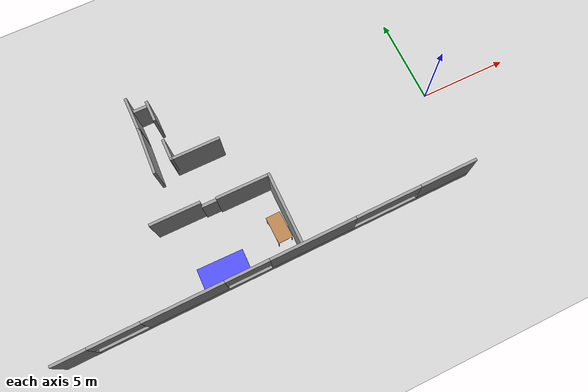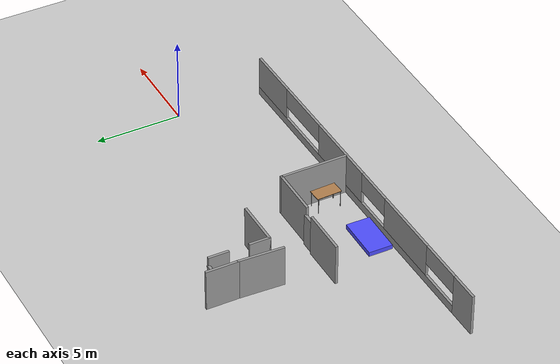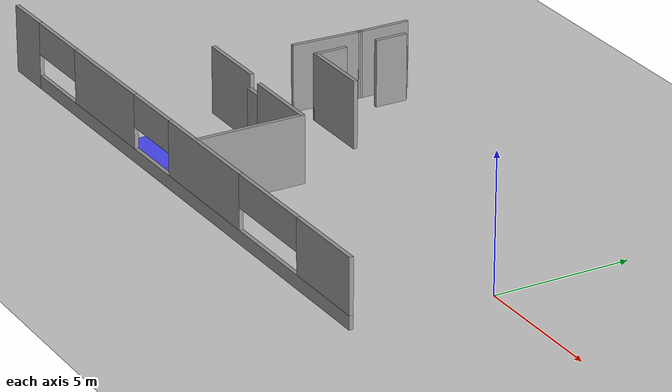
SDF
<sdf version="1.7">
 <world name="default">
  <model name="ground_plane">
   <static>1</static>
   <link name="link">
    <collision name="collision">
     <geometry><plane><normal>0 0 1</normal><size>100 100</size></plane></geometry>
     <surface><friction><ode><mu>100</mu><mu2>50</mu2></ode></friction></surface>
    </collision>
    <visual name="visual">
     <cast_shadows>0</cast_shadows>
     <geometry><plane><normal>0 0 1</normal><size>100 100</size></plane></geometry>
     <material>
      <script><uri>file://media/materials/scripts/gazebo.material</uri><name>Gazebo/Grey</name></script>
     </material>
    </visual>
   </link>
  </model>
  <model name="table_1">
   <static>1</static>
   <link name="link">
    <collision name="surface">
     <pose>0 0 1 0 -0 0</pose>
     <geometry><box><size>1.5 0.8 0.03</size></box></geometry>
     <surface><friction><ode><mu>0.6</mu><mu2>0.6</mu2></ode></friction></surface>
    </collision>
    <visual name="visual1">
     <pose>0 0 1 0 -0 0</pose>
     <geometry><box><size>1.5 0.8 0.03</size></box></geometry>
     <material>
      <script><uri>file://media/materials/scripts/gazebo.material</uri><name>Gazebo/Wood</name></script>
     </material>
    </visual>
    <collision name="front_left_leg">
     <pose>0.68 0.38 0.5 0 -0 0</pose>
     <geometry><cylinder><radius>0.02</radius><length>1</length></cylinder></geometry>
    </collision>
    <visual name="front_left_leg">
     <pose>0.68 0.38 0.5 0 -0 0</pose>
     <geometry><cylinder><radius>0.02</radius><length>1</length></cylinder></geometry>
     <material>
      <script><uri>file://media/materials/scripts/gazebo.material</uri><name>Gazebo/Grey</name></script>
     </material>
    </visual>
    <collision name="front_right_leg">
     <pose>0.68 -0.38 0.5 0 -0 0</pose>
     <geometry><cylinder><radius>0.02</radius><length>1</length></cylinder></geometry>
    </collision>
    <visual name="front_right_leg">
     <pose>0.68 -0.38 0.5 0 -0 0</pose>
     <geometry><cylinder><radius>0.02</radius><length>1</length></cylinder></geometry>
     <material>
      <script><uri>file://media/materials/scripts/gazebo.material</uri><name>Gazebo/Grey</name></script>
     </material>
    </visual>
    <collision name="back_right_leg">
     <pose>-0.68 -0.38 0.5 0 -0 0</pose>
     <geometry><cylinder><radius>0.02</radius><length>1</length></cylinder></geometry>
    </collision>
    <visual name="back_right_leg">
     <pose>-0.68 -0.38 0.5 0 -0 0</pose>
     <geometry><cylinder><radius>0.02</radius><length>1</length></cylinder></geometry>
     <material>
      <script><uri>file://media/materials/scripts/gazebo.material</uri><name>Gazebo/Grey</name></script>
     </material>
    </visual>
    <collision name="back_left_leg">
     <pose>-0.68 0.38 0.5 0 -0 0</pose>
     <geometry><cylinder><radius>0.02</radius><length>1</length></cylinder></geometry>
    </collision>
    <visual name="back_left_leg">
     <pose>-0.68 0.38 0.5 0 -0 0</pose>
     <geometry><cylinder><radius>0.02</radius><length>1</length></cylinder></geometry>
     <material>
      <script><uri>file://media/materials/scripts/gazebo.material</uri><name>Gazebo/Grey</name></script>
     </material>
    </visual>
   </link>
   <pose>-10.7209 -3.54657 0 0 0 -1.53816</pose>
  </model>
  <model name="bed_1_clone">
   <link name="link">
    <inertial>
     <mass>1</mass>
     <inertia>
      <ixx>0.166667</ixx>
      <ixy>0</ixy>
      <ixz>0</ixz>
      <iyy>0.166667</iyy>
      <iyz>0</iyz>
      <izz>0.166667</izz>
     </inertia>
    </inertial>
    <visual name="visual">
     <geometry><box><size>1.40955 2.56695 0.267057</size></box></geometry>
     <material>
      <script><name>Gazebo/Grey</name><uri>file://media/materials/scripts/gazebo.material</uri></script>
      <shader type="pixel"><normal_map>__default__</normal_map></shader>
      <ambient>0.3 0.3 1 0</ambient>
      <diffuse>0.7 0.7 0.7 1</diffuse>
      <specular>0.01 0.01 0.01 1</specular>
      <emissive>0 0 0 1</emissive>
     </material>
    </visual>
    <collision name="collision">
     <geometry><box><size>1.40955 2.56695 0.267057</size></box></geometry>
     <surface>
      <friction>
       <ode><mu>1</mu><mu2>1</mu2><fdir1>0 0 0</fdir1><slip1>0</slip1><slip2>0</slip2></ode>
       <torsional>
        <coefficient>1</coefficient>
        <patch_radius>0</patch_radius>
        <surface_radius>0</surface_radius>
        <use_patch_radius>1</use_patch_radius>
        <ode><slip>0</slip></ode>
       </torsional>
      </friction>
      <bounce><restitution_coefficient>0</restitution_coefficient><threshold>1e+06</threshold></bounce>
      <contact>
       <collide_without_contact>0</collide_without_contact>
       <collide_without_contact_bitmask>1</collide_without_contact_bitmask>
       <collide_bitmask>1</collide_bitmask>
       <ode>
        <soft_cfm>0</soft_cfm>
        <soft_erp>0.2</soft_erp>
        <kp>1e+13</kp>
        <kd>1</kd>
        <max_vel>0.01</max_vel>
        <min_depth>0</min_depth>
       </ode>
       <bullet>
        <split_impulse>1</split_impulse>
        <split_impulse_penetration_threshold>-0.01</split_impulse_penetration_threshold>
        <soft_cfm>0</soft_cfm>
        <soft_erp>0.2</soft_erp>
        <kp>1e+13</kp>
        <kd>1</kd>
       </bullet>
      </contact>
     </surface>
    </collision>
   </link>
   <static>0</static>
   <pose>-14.1949 -4.28318 0.133524 0 7e-06 -1.58215</pose>
  </model>
  <model name="Building">
   <link name="Door_0">
    <pose>-3.07095 4.97963 0 0 -0 0</pose>
    <visual name="Door_0_Visual">
     <pose>0 0 1 0 -0 0</pose>
     <geometry><box><size>0.9 0.17 2</size></box></geometry>
     <material>
      <script><uri>file://media/materials/scripts/gazebo.material</uri><name>Gazebo/Grey</name></script>
      <shader type="pixel"/>
      <ambient>0.3 0.3 0.3 1</ambient>
      <diffuse>0.7 0.7 0.7 1</diffuse>
      <specular>0.01 0.01 0.01 1</specular>
      <emissive>0 0 0 1</emissive>
     </material>
    </visual>
    <collision name="Door_0_Collision">
     <pose>0 0 1 0 -0 0</pose>
     <geometry><box><size>0.9 0.17 2</size></box></geometry>
     <surface>
      <friction>
       <ode><mu>1</mu><mu2>1</mu2><fdir1>0 0 0</fdir1><slip1>0</slip1><slip2>0</slip2></ode>
       <torsional>
        <coefficient>1</coefficient>
        <patch_radius>0</patch_radius>
        <surface_radius>0</surface_radius>
        <use_patch_radius>1</use_patch_radius>
        <ode><slip>0</slip></ode>
       </torsional>
      </friction>
      <bounce><restitution_coefficient>0</restitution_coefficient><threshold>1e+06</threshold></bounce>
      <contact>
       <collide_without_contact>0</collide_without_contact>
       <collide_without_contact_bitmask>1</collide_without_contact_bitmask>
       <collide_bitmask>1</collide_bitmask>
       <ode>
        <soft_cfm>0</soft_cfm>
        <soft_erp>0.2</soft_erp>
        <kp>1e+13</kp>
        <kd>1</kd>
        <max_vel>0.01</max_vel>
        <min_depth>0</min_depth>
       </ode>
       <bullet>
        <split_impulse>1</split_impulse>
        <split_impulse_penetration_threshold>-0.01</split_impulse_penetration_threshold>
        <soft_cfm>0</soft_cfm>
        <soft_erp>0.2</soft_erp>
        <kp>1e+13</kp>
        <kd>1</kd>
       </bullet>
      </contact>
     </surface>
    </collision>
   </link>
   <link name="Door_4">
    <pose>-1.77638 -1.3719 0 0 -0 0</pose>
    <visual name="Door_4_Visual">
     <pose>0 0 1 0 -0 0</pose>
     <geometry><box><size>0.9 0.17 2</size></box></geometry>
     <material>
      <script><uri>file://media/materials/scripts/gazebo.material</uri><name>Gazebo/Grey</name></script>
      <shader type="pixel"/>
      <ambient>0.3 0.3 0.3 1</ambient>
      <diffuse>0.7 0.7 0.7 1</diffuse>
      <specular>0.01 0.01 0.01 1</specular>
      <emissive>0 0 0 1</emissive>
     </material>
    </visual>
    <collision name="Door_4_Collision">
     <pose>0 0 1 0 -0 0</pose>
     <geometry><box><size>0.9 0.17 2</size></box></geometry>
     <surface>
      <friction>
       <ode><mu>1</mu><mu2>1</mu2><fdir1>0 0 0</fdir1><slip1>0</slip1><slip2>0</slip2></ode>
       <torsional>
        <coefficient>1</coefficient>
        <patch_radius>0</patch_radius>
        <surface_radius>0</surface_radius>
        <use_patch_radius>1</use_patch_radius>
        <ode><slip>0</slip></ode>
       </torsional>
      </friction>
      <bounce><restitution_coefficient>0</restitution_coefficient><threshold>1e+06</threshold></bounce>
      <contact>
       <collide_without_contact>0</collide_without_contact>
       <collide_without_contact_bitmask>1</collide_without_contact_bitmask>
       <collide_bitmask>1</collide_bitmask>
       <ode>
        <soft_cfm>0</soft_cfm>
        <soft_erp>0.2</soft_erp>
        <kp>1e+13</kp>
        <kd>1</kd>
        <max_vel>0.01</max_vel>
        <min_depth>0</min_depth>
       </ode>
       <bullet>
        <split_impulse>1</split_impulse>
        <split_impulse_penetration_threshold>-0.01</split_impulse_penetration_threshold>
        <soft_cfm>0</soft_cfm>
        <soft_erp>0.2</soft_erp>
        <kp>1e+13</kp>
        <kd>1</kd>
       </bullet>
      </contact>
     </surface>
    </collision>
   </link>
   <link name="Wall_1">
    <pose>-3.5548 4.621 0 0 0 -1.5708</pose>
    <visual name="Wall_1_Visual">
     <pose>0 0 1.25 0 -0 0</pose>
     <geometry><box><size>2 0.15 2.5</size></box></geometry>
     <material>
      <script><uri>file://media/materials/scripts/gazebo.material</uri><name>Gazebo/Grey</name></script>
      <ambient>1 1 1 1</ambient>
      <shader type="pixel"/>
      <diffuse>0.7 0.7 0.7 1</diffuse>
      <specular>0.01 0.01 0.01 1</specular>
      <emissive>0 0 0 1</emissive>
     </material>
     <meta><layer>0</layer></meta>
    </visual>
    <collision name="Wall_1_Collision">
     <pose>0 0 1.25 0 -0 0</pose>
     <geometry><box><size>2 0.15 2.5</size></box></geometry>
     <surface>
      <friction>
       <ode><mu>1</mu><mu2>1</mu2><fdir1>0 0 0</fdir1><slip1>0</slip1><slip2>0</slip2></ode>
       <torsional>
        <coefficient>1</coefficient>
        <patch_radius>0</patch_radius>
        <surface_radius>0</surface_radius>
        <use_patch_radius>1</use_patch_radius>
        <ode><slip>0</slip></ode>
       </torsional>
      </friction>
      <bounce><restitution_coefficient>0</restitution_coefficient><threshold>1e+06</threshold></bounce>
      <contact>
       <collide_without_contact>0</collide_without_contact>
       <collide_without_contact_bitmask>1</collide_without_contact_bitmask>
       <collide_bitmask>1</collide_bitmask>
       <ode>
        <soft_cfm>0</soft_cfm>
        <soft_erp>0.2</soft_erp>
        <kp>1e+13</kp>
        <kd>1</kd>
        <max_vel>0.01</max_vel>
        <min_depth>0</min_depth>
       </ode>
       <bullet>
        <split_impulse>1</split_impulse>
        <split_impulse_penetration_threshold>-0.01</split_impulse_penetration_threshold>
        <soft_cfm>0</soft_cfm>
        <soft_erp>0.2</soft_erp>
        <kp>1e+13</kp>
        <kd>1</kd>
       </bullet>
      </contact>
     </surface>
    </collision>
   </link>
   <link name="Wall_15">
    <pose>-3.61293 2.4364 0 0 -0 1.52468</pose>
    <visual name="Wall_15_Visual">
     <pose>0 0 1.25 0 -0 0</pose>
     <geometry><box><size>2.67188 0.15 2.5</size></box></geometry>
     <material>
      <script><uri>file://media/materials/scripts/gazebo.material</uri><name>Gazebo/Grey</name></script>
      <ambient>1 1 1 1</ambient>
      <shader type="pixel"/>
      <diffuse>0.7 0.7 0.7 1</diffuse>
      <specular>0.01 0.01 0.01 1</specular>
      <emissive>0 0 0 1</emissive>
     </material>
     <meta><layer>0</layer></meta>
    </visual>
    <collision name="Wall_15_Collision">
     <pose>0 0 1.25 0 -0 0</pose>
     <geometry><box><size>2.67188 0.15 2.5</size></box></geometry>
     <surface>
      <friction>
       <ode><mu>1</mu><mu2>1</mu2><fdir1>0 0 0</fdir1><slip1>0</slip1><slip2>0</slip2></ode>
       <torsional>
        <coefficient>1</coefficient>
        <patch_radius>0</patch_radius>
        <surface_radius>0</surface_radius>
        <use_patch_radius>1</use_patch_radius>
        <ode><slip>0</slip></ode>
       </torsional>
      </friction>
      <bounce><restitution_coefficient>0</restitution_coefficient><threshold>1e+06</threshold></bounce>
      <contact>
       <collide_without_contact>0</collide_without_contact>
       <collide_without_contact_bitmask>1</collide_without_contact_bitmask>
       <collide_bitmask>1</collide_bitmask>
       <ode>
        <soft_cfm>0</soft_cfm>
        <soft_erp>0.2</soft_erp>
        <kp>1e+13</kp>
        <kd>1</kd>
        <max_vel>0.01</max_vel>
        <min_depth>0</min_depth>
       </ode>
       <bullet>
        <split_impulse>1</split_impulse>
        <split_impulse_penetration_threshold>-0.01</split_impulse_penetration_threshold>
        <soft_cfm>0</soft_cfm>
        <soft_erp>0.2</soft_erp>
        <kp>1e+13</kp>
        <kd>1</kd>
       </bullet>
      </contact>
     </surface>
    </collision>
   </link>
   <link name="Wall_20">
    <pose>-3.551 -1.29099 0 0 -0 0</pose>
    <visual name="Wall_20_Visual">
     <pose>0 0 1.25 0 -0 0</pose>
     <geometry><box><size>2.75 0.15 2.5</size></box></geometry>
     <material>
      <script><uri>file://media/materials/scripts/gazebo.material</uri><name>Gazebo/Grey</name></script>
      <ambient>1 1 1 1</ambient>
      <shader type="pixel"/>
      <diffuse>0.7 0.7 0.7 1</diffuse>
      <specular>0.01 0.01 0.01 1</specular>
      <emissive>0 0 0 1</emissive>
     </material>
     <meta><layer>0</layer></meta>
    </visual>
    <collision name="Wall_20_Collision">
     <pose>0 0 1.25 0 -0 0</pose>
     <geometry><box><size>2.75 0.15 2.5</size></box></geometry>
     <surface>
      <friction>
       <ode><mu>1</mu><mu2>1</mu2><fdir1>0 0 0</fdir1><slip1>0</slip1><slip2>0</slip2></ode>
       <torsional>
        <coefficient>1</coefficient>
        <patch_radius>0</patch_radius>
        <surface_radius>0</surface_radius>
        <use_patch_radius>1</use_patch_radius>
        <ode><slip>0</slip></ode>
       </torsional>
      </friction>
      <bounce><restitution_coefficient>0</restitution_coefficient><threshold>1e+06</threshold></bounce>
      <contact>
       <collide_without_contact>0</collide_without_contact>
       <collide_without_contact_bitmask>1</collide_without_contact_bitmask>
       <collide_bitmask>1</collide_bitmask>
       <ode>
        <soft_cfm>0</soft_cfm>
        <soft_erp>0.2</soft_erp>
        <kp>1e+13</kp>
        <kd>1</kd>
        <max_vel>0.01</max_vel>
        <min_depth>0</min_depth>
       </ode>
       <bullet>
        <split_impulse>1</split_impulse>
        <split_impulse_penetration_threshold>-0.01</split_impulse_penetration_threshold>
        <soft_cfm>0</soft_cfm>
        <soft_erp>0.2</soft_erp>
        <kp>1e+13</kp>
        <kd>1</kd>
       </bullet>
      </contact>
     </surface>
    </collision>
   </link>
   <link name="Wall_22">
    <pose>-2.6112 4.39486 0 0 0 -1.5708</pose>
    <visual name="Wall_22_Visual">
     <pose>0 0 1.25 0 -0 0</pose>
     <geometry><box><size>1.20954 0.15 2.5</size></box></geometry>
     <material>
      <script><uri>file://media/materials/scripts/gazebo.material</uri><name>Gazebo/Grey</name></script>
      <ambient>1 1 1 1</ambient>
      <shader type="pixel"/>
      <diffuse>0.7 0.7 0.7 1</diffuse>
      <specular>0.01 0.01 0.01 1</specular>
      <emissive>0 0 0 1</emissive>
     </material>
     <meta><layer>0</layer></meta>
    </visual>
    <collision name="Wall_22_Collision">
     <pose>0 0 1.25 0 -0 0</pose>
     <geometry><box><size>1.20954 0.15 2.5</size></box></geometry>
     <surface>
      <friction>
       <ode><mu>1</mu><mu2>1</mu2><fdir1>0 0 0</fdir1><slip1>0</slip1><slip2>0</slip2></ode>
       <torsional>
        <coefficient>1</coefficient>
        <patch_radius>0</patch_radius>
        <surface_radius>0</surface_radius>
        <use_patch_radius>1</use_patch_radius>
        <ode><slip>0</slip></ode>
       </torsional>
      </friction>
      <bounce><restitution_coefficient>0</restitution_coefficient><threshold>1e+06</threshold></bounce>
      <contact>
       <collide_without_contact>0</collide_without_contact>
       <collide_without_contact_bitmask>1</collide_without_contact_bitmask>
       <collide_bitmask>1</collide_bitmask>
       <ode>
        <soft_cfm>0</soft_cfm>
        <soft_erp>0.2</soft_erp>
        <kp>1e+13</kp>
        <kd>1</kd>
        <max_vel>0.01</max_vel>
        <min_depth>0</min_depth>
       </ode>
       <bullet>
        <split_impulse>1</split_impulse>
        <split_impulse_penetration_threshold>-0.01</split_impulse_penetration_threshold>
        <soft_cfm>0</soft_cfm>
        <soft_erp>0.2</soft_erp>
        <kp>1e+13</kp>
        <kd>1</kd>
       </bullet>
      </contact>
     </surface>
    </collision>
   </link>
   <link name="Wall_24">
    <pose>-2.62594 2.00229 0 0 0 -1.5708</pose>
    <visual name="Wall_24_Visual">
     <pose>0 0 1.25 0 -0 0</pose>
     <geometry><box><size>1.25 0.15 2.5</size></box></geometry>
     <material>
      <script><uri>file://media/materials/scripts/gazebo.material</uri><name>Gazebo/Grey</name></script>
      <ambient>1 1 1 1</ambient>
      <shader type="pixel"/>
      <diffuse>0.7 0.7 0.7 1</diffuse>
      <specular>0.01 0.01 0.01 1</specular>
      <emissive>0 0 0 1</emissive>
     </material>
     <meta><layer>0</layer></meta>
    </visual>
    <collision name="Wall_24_Collision">
     <pose>0 0 1.25 0 -0 0</pose>
     <geometry><box><size>1.25 0.15 2.5</size></box></geometry>
     <surface>
      <friction>
       <ode><mu>1</mu><mu2>1</mu2><fdir1>0 0 0</fdir1><slip1>0</slip1><slip2>0</slip2></ode>
       <torsional>
        <coefficient>1</coefficient>
        <patch_radius>0</patch_radius>
        <surface_radius>0</surface_radius>
        <use_patch_radius>1</use_patch_radius>
        <ode><slip>0</slip></ode>
       </torsional>
      </friction>
      <bounce><restitution_coefficient>0</restitution_coefficient><threshold>1e+06</threshold></bounce>
      <contact>
       <collide_without_contact>0</collide_without_contact>
       <collide_without_contact_bitmask>1</collide_without_contact_bitmask>
       <collide_bitmask>1</collide_bitmask>
       <ode>
        <soft_cfm>0</soft_cfm>
        <soft_erp>0.2</soft_erp>
        <kp>1e+13</kp>
        <kd>1</kd>
        <max_vel>0.01</max_vel>
        <min_depth>0</min_depth>
       </ode>
       <bullet>
        <split_impulse>1</split_impulse>
        <split_impulse_penetration_threshold>-0.01</split_impulse_penetration_threshold>
        <soft_cfm>0</soft_cfm>
        <soft_erp>0.2</soft_erp>
        <kp>1e+13</kp>
        <kd>1</kd>
       </bullet>
      </contact>
     </surface>
    </collision>
   </link>
   <link name="Wall_25">
    <pose>-1.32594 1.45229 0 0 -0 0</pose>
    <visual name="Wall_25_Visual">
     <pose>0 0 1.25 0 -0 0</pose>
     <geometry><box><size>2.75 0.15 2.5</size></box></geometry>
     <material>
      <script><uri>file://media/materials/scripts/gazebo.material</uri><name>Gazebo/Grey</name></script>
      <ambient>1 1 1 1</ambient>
      <shader type="pixel"/>
      <diffuse>0.7 0.7 0.7 1</diffuse>
      <specular>0.01 0.01 0.01 1</specular>
      <emissive>0 0 0 1</emissive>
     </material>
     <meta><layer>0</layer></meta>
    </visual>
    <collision name="Wall_25_Collision">
     <pose>0 0 1.25 0 -0 0</pose>
     <geometry><box><size>2.75 0.15 2.5</size></box></geometry>
     <surface>
      <friction>
       <ode><mu>1</mu><mu2>1</mu2><fdir1>0 0 0</fdir1><slip1>0</slip1><slip2>0</slip2></ode>
       <torsional>
        <coefficient>1</coefficient>
        <patch_radius>0</patch_radius>
        <surface_radius>0</surface_radius>
        <use_patch_radius>1</use_patch_radius>
        <ode><slip>0</slip></ode>
       </torsional>
      </friction>
      <bounce><restitution_coefficient>0</restitution_coefficient><threshold>1e+06</threshold></bounce>
      <contact>
       <collide_without_contact>0</collide_without_contact>
       <collide_without_contact_bitmask>1</collide_without_contact_bitmask>
       <collide_bitmask>1</collide_bitmask>
       <ode>
        <soft_cfm>0</soft_cfm>
        <soft_erp>0.2</soft_erp>
        <kp>1e+13</kp>
        <kd>1</kd>
        <max_vel>0.01</max_vel>
        <min_depth>0</min_depth>
       </ode>
       <bullet>
        <split_impulse>1</split_impulse>
        <split_impulse_penetration_threshold>-0.01</split_impulse_penetration_threshold>
        <soft_cfm>0</soft_cfm>
        <soft_erp>0.2</soft_erp>
        <kp>1e+13</kp>
        <kd>1</kd>
       </bullet>
      </contact>
     </surface>
    </collision>
   </link>
   <link name="Wall_29">
    <pose>0.093636 -1.45281 0 0 -0 0</pose>
    <visual name="Wall_29_Visual">
     <pose>0 0 1.25 0 -0 0</pose>
     <geometry><box><size>3 0.15 2.5</size></box></geometry>
     <material>
      <script><uri>file://media/materials/scripts/gazebo.material</uri><name>Gazebo/Grey</name></script>
      <ambient>1 1 1 1</ambient>
      <shader type="pixel"/>
      <diffuse>0.7 0.7 0.7 1</diffuse>
      <specular>0.01 0.01 0.01 1</specular>
      <emissive>0 0 0 1</emissive>
     </material>
     <meta><layer>0</layer></meta>
    </visual>
    <collision name="Wall_29_Collision">
     <pose>0 0 1.25 0 -0 0</pose>
     <geometry><box><size>3 0.15 2.5</size></box></geometry>
     <surface>
      <friction>
       <ode><mu>1</mu><mu2>1</mu2><fdir1>0 0 0</fdir1><slip1>0</slip1><slip2>0</slip2></ode>
       <torsional>
        <coefficient>1</coefficient>
        <patch_radius>0</patch_radius>
        <surface_radius>0</surface_radius>
        <use_patch_radius>1</use_patch_radius>
        <ode><slip>0</slip></ode>
       </torsional>
      </friction>
      <bounce><restitution_coefficient>0</restitution_coefficient><threshold>1e+06</threshold></bounce>
      <contact>
       <collide_without_contact>0</collide_without_contact>
       <collide_without_contact_bitmask>1</collide_without_contact_bitmask>
       <collide_bitmask>1</collide_bitmask>
       <ode>
        <soft_cfm>0</soft_cfm>
        <soft_erp>0.2</soft_erp>
        <kp>1e+13</kp>
        <kd>1</kd>
        <max_vel>0.01</max_vel>
        <min_depth>0</min_depth>
       </ode>
       <bullet>
        <split_impulse>1</split_impulse>
        <split_impulse_penetration_threshold>-0.01</split_impulse_penetration_threshold>
        <soft_cfm>0</soft_cfm>
        <soft_erp>0.2</soft_erp>
        <kp>1e+13</kp>
        <kd>1</kd>
       </bullet>
      </contact>
     </surface>
    </collision>
   </link>
   <link name="Wall_30">
    <pose>1.51864 -3.37781 0 0 0 -1.5708</pose>
    <visual name="Wall_30_Visual">
     <pose>0 0 1.25 0 -0 0</pose>
     <geometry><box><size>4 0.15 2.5</size></box></geometry>
     <material>
      <script><uri>file://media/materials/scripts/gazebo.material</uri><name>Gazebo/Grey</name></script>
      <ambient>1 1 1 1</ambient>
      <shader type="pixel"/>
      <diffuse>0.7 0.7 0.7 1</diffuse>
      <specular>0.01 0.01 0.01 1</specular>
      <emissive>0 0 0 1</emissive>
     </material>
     <meta><layer>0</layer></meta>
    </visual>
    <collision name="Wall_30_Collision">
     <pose>0 0 1.25 0 -0 0</pose>
     <geometry><box><size>4 0.15 2.5</size></box></geometry>
     <surface>
      <friction>
       <ode><mu>1</mu><mu2>1</mu2><fdir1>0 0 0</fdir1><slip1>0</slip1><slip2>0</slip2></ode>
       <torsional>
        <coefficient>1</coefficient>
        <patch_radius>0</patch_radius>
        <surface_radius>0</surface_radius>
        <use_patch_radius>1</use_patch_radius>
        <ode><slip>0</slip></ode>
       </torsional>
      </friction>
      <bounce><restitution_coefficient>0</restitution_coefficient><threshold>1e+06</threshold></bounce>
      <contact>
       <collide_without_contact>0</collide_without_contact>
       <collide_without_contact_bitmask>1</collide_without_contact_bitmask>
       <collide_bitmask>1</collide_bitmask>
       <ode>
        <soft_cfm>0</soft_cfm>
        <soft_erp>0.2</soft_erp>
        <kp>1e+13</kp>
        <kd>1</kd>
        <max_vel>0.01</max_vel>
        <min_depth>0</min_depth>
       </ode>
       <bullet>
        <split_impulse>1</split_impulse>
        <split_impulse_penetration_threshold>-0.01</split_impulse_penetration_threshold>
        <soft_cfm>0</soft_cfm>
        <soft_erp>0.2</soft_erp>
        <kp>1e+13</kp>
        <kd>1</kd>
       </bullet>
      </contact>
     </surface>
    </collision>
   </link>
   <link name="Wall_4">
    <pose>-0.060713 -5.42439 0 0 -0 0.01066</pose>
    <visual name="Wall_4_Visual_6">
     <pose>-1.39273 0 1.9 0 -0 0</pose>
     <geometry><box><size>2.41899 0.15 1.2</size></box></geometry>
     <material>
      <script><uri>file://media/materials/scripts/gazebo.material</uri><name>Gazebo/Grey</name></script>
      <ambient>1 1 1 1</ambient>
      <shader type="pixel"/>
      <diffuse>0.7 0.7 0.7 1</diffuse>
      <specular>0.01 0.01 0.01 1</specular>
      <emissive>0 0 0 1</emissive>
     </material>
     <meta><layer>0</layer></meta>
    </visual>
    <visual name="Wall_4_Visual_0">
     <pose>-10.5506 0 1.25 0 -0 0</pose>
     <geometry><box><size>1.8191 0.15 2.5</size></box></geometry>
     <material>
      <script><uri>file://media/materials/scripts/gazebo.material</uri><name>Gazebo/Grey</name></script>
      <ambient>1 1 1 1</ambient>
      <shader type="pixel"/>
      <diffuse>0.7 0.7 0.7 1</diffuse>
      <specular>0.01 0.01 0.01 1</specular>
      <emissive>0 0 0 1</emissive>
     </material>
     <meta><layer>0</layer></meta>
    </visual>
    <visual name="Wall_4_Visual_1">
     <pose>0.909548 0 0.25 0 -0 0</pose>
     <geometry><box><size>21.1013 0.15 0.5</size></box></geometry>
     <material>
      <script><uri>file://media/materials/scripts/gazebo.material</uri><name>Gazebo/Grey</name></script>
      <ambient>1 1 1 1</ambient>
      <shader type="pixel"/>
      <diffuse>0.7 0.7 0.7 1</diffuse>
      <specular>0.01 0.01 0.01 1</specular>
      <emissive>0 0 0 1</emissive>
     </material>
     <meta><layer>0</layer></meta>
    </visual>
    <visual name="Wall_4_Visual_3">
     <pose>2.18825 0 1.5 0 -0 0</pose>
     <geometry><box><size>4.74296 0.15 2</size></box></geometry>
     <material>
      <script><uri>file://media/materials/scripts/gazebo.material</uri><name>Gazebo/Grey</name></script>
      <ambient>1 1 1 1</ambient>
      <shader type="pixel"/>
      <diffuse>0.7 0.7 0.7 1</diffuse>
      <specular>0.01 0.01 0.01 1</specular>
      <emissive>0 0 0 1</emissive>
     </material>
     <meta><layer>0</layer></meta>
    </visual>
    <visual name="Wall_4_Visual_2">
     <pose>-4.77101 0 1.5 0 -0 0</pose>
     <geometry><box><size>4.33757 0.15 2</size></box></geometry>
     <material>
      <script><uri>file://media/materials/scripts/gazebo.material</uri><name>Gazebo/Grey</name></script>
      <ambient>1 1 1 1</ambient>
      <shader type="pixel"/>
      <diffuse>0.7 0.7 0.7 1</diffuse>
      <specular>0.01 0.01 0.01 1</specular>
      <emissive>0 0 0 1</emissive>
     </material>
     <meta><layer>0</layer></meta>
    </visual>
    <visual name="Wall_4_Visual_4">
     <pose>9.84605 0 1.5 0 -0 0</pose>
     <geometry><box><size>3.22828 0.15 2</size></box></geometry>
     <material>
      <script><uri>file://media/materials/scripts/gazebo.material</uri><name>Gazebo/Grey</name></script>
      <ambient>1 1 1 1</ambient>
      <shader type="pixel"/>
      <diffuse>0.7 0.7 0.7 1</diffuse>
      <specular>0.01 0.01 0.01 1</specular>
      <emissive>0 0 0 1</emissive>
     </material>
     <meta><layer>0</layer></meta>
    </visual>
    <visual name="Wall_4_Visual_5">
     <pose>-8.29044 0 1.9 0 -0 0</pose>
     <geometry><box><size>2.7013 0.15 1.2</size></box></geometry>
     <material>
      <script><uri>file://media/materials/scripts/gazebo.material</uri><name>Gazebo/Grey</name></script>
      <ambient>1 1 1 1</ambient>
      <shader type="pixel"/>
      <diffuse>0.7 0.7 0.7 1</diffuse>
      <specular>0.01 0.01 0.01 1</specular>
      <emissive>0 0 0 1</emissive>
     </material>
     <meta><layer>0</layer></meta>
    </visual>
    <visual name="Wall_4_Visual_7">
     <pose>6.39582 0 1.9 0 -0 0</pose>
     <geometry><box><size>3.67218 0.15 1.2</size></box></geometry>
     <material>
      <script><uri>file://media/materials/scripts/gazebo.material</uri><name>Gazebo/Grey</name></script>
      <ambient>1 1 1 1</ambient>
      <shader type="pixel"/>
      <diffuse>0.7 0.7 0.7 1</diffuse>
      <specular>0.01 0.01 0.01 1</specular>
      <emissive>0 0 0 1</emissive>
     </material>
     <meta><layer>0</layer></meta>
    </visual>
    <collision name="Wall_4_Collision_5">
     <pose>-8.29044 0 1.9 0 -0 0</pose>
     <geometry><box><size>2.7013 0.15 1.2</size></box></geometry>
     <surface>
      <friction>
       <ode><mu>1</mu><mu2>1</mu2><fdir1>0 0 0</fdir1><slip1>0</slip1><slip2>0</slip2></ode>
       <torsional>
        <coefficient>1</coefficient>
        <patch_radius>0</patch_radius>
        <surface_radius>0</surface_radius>
        <use_patch_radius>1</use_patch_radius>
        <ode><slip>0</slip></ode>
       </torsional>
      </friction>
      <bounce><restitution_coefficient>0</restitution_coefficient><threshold>1e+06</threshold></bounce>
      <contact>
       <collide_without_contact>0</collide_without_contact>
       <collide_without_contact_bitmask>1</collide_without_contact_bitmask>
       <collide_bitmask>1</collide_bitmask>
       <ode>
        <soft_cfm>0</soft_cfm>
        <soft_erp>0.2</soft_erp>
        <kp>1e+13</kp>
        <kd>1</kd>
        <max_vel>0.01</max_vel>
        <min_depth>0</min_depth>
       </ode>
       <bullet>
        <split_impulse>1</split_impulse>
        <split_impulse_penetration_threshold>-0.01</split_impulse_penetration_threshold>
        <soft_cfm>0</soft_cfm>
        <soft_erp>0.2</soft_erp>
        <kp>1e+13</kp>
        <kd>1</kd>
       </bullet>
      </contact>
     </surface>
    </collision>
    <collision name="Wall_4_Collision_6">
     <pose>-1.39273 0 1.9 0 -0 0</pose>
     <geometry><box><size>2.41899 0.15 1.2</size></box></geometry>
     <surface>
      <friction>
       <ode><mu>1</mu><mu2>1</mu2><fdir1>0 0 0</fdir1><slip1>0</slip1><slip2>0</slip2></ode>
       <torsional>
        <coefficient>1</coefficient>
        <patch_radius>0</patch_radius>
        <surface_radius>0</surface_radius>
        <use_patch_radius>1</use_patch_radius>
        <ode><slip>0</slip></ode>
       </torsional>
      </friction>
      <bounce><restitution_coefficient>0</restitution_coefficient><threshold>1e+06</threshold></bounce>
      <contact>
       <collide_without_contact>0</collide_without_contact>
       <collide_without_contact_bitmask>1</collide_without_contact_bitmask>
       <collide_bitmask>1</collide_bitmask>
       <ode>
        <soft_cfm>0</soft_cfm>
        <soft_erp>0.2</soft_erp>
        <kp>1e+13</kp>
        <kd>1</kd>
        <max_vel>0.01</max_vel>
        <min_depth>0</min_depth>
       </ode>
       <bullet>
        <split_impulse>1</split_impulse>
        <split_impulse_penetration_threshold>-0.01</split_impulse_penetration_threshold>
        <soft_cfm>0</soft_cfm>
        <soft_erp>0.2</soft_erp>
        <kp>1e+13</kp>
        <kd>1</kd>
       </bullet>
      </contact>
     </surface>
    </collision>
    <collision name="Wall_4_Collision_0">
     <pose>-10.5506 0 1.25 0 -0 0</pose>
     <geometry><box><size>1.8191 0.15 2.5</size></box></geometry>
     <surface>
      <friction>
       <ode><mu>1</mu><mu2>1</mu2><fdir1>0 0 0</fdir1><slip1>0</slip1><slip2>0</slip2></ode>
       <torsional>
        <coefficient>1</coefficient>
        <patch_radius>0</patch_radius>
        <surface_radius>0</surface_radius>
        <use_patch_radius>1</use_patch_radius>
        <ode><slip>0</slip></ode>
       </torsional>
      </friction>
      <bounce><restitution_coefficient>0</restitution_coefficient><threshold>1e+06</threshold></bounce>
      <contact>
       <collide_without_contact>0</collide_without_contact>
       <collide_without_contact_bitmask>1</collide_without_contact_bitmask>
       <collide_bitmask>1</collide_bitmask>
       <ode>
        <soft_cfm>0</soft_cfm>
        <soft_erp>0.2</soft_erp>
        <kp>1e+13</kp>
        <kd>1</kd>
        <max_vel>0.01</max_vel>
        <min_depth>0</min_depth>
       </ode>
       <bullet>
        <split_impulse>1</split_impulse>
        <split_impulse_penetration_threshold>-0.01</split_impulse_penetration_threshold>
        <soft_cfm>0</soft_cfm>
        <soft_erp>0.2</soft_erp>
        <kp>1e+13</kp>
        <kd>1</kd>
       </bullet>
      </contact>
     </surface>
    </collision>
    <collision name="Wall_4_Collision_1">
     <pose>0.909548 0 0.25 0 -0 0</pose>
     <geometry><box><size>21.1013 0.15 0.5</size></box></geometry>
     <surface>
      <friction>
       <ode><mu>1</mu><mu2>1</mu2><fdir1>0 0 0</fdir1><slip1>0</slip1><slip2>0</slip2></ode>
       <torsional>
        <coefficient>1</coefficient>
        <patch_radius>0</patch_radius>
        <surface_radius>0</surface_radius>
        <use_patch_radius>1</use_patch_radius>
        <ode><slip>0</slip></ode>
       </torsional>
      </friction>
      <bounce><restitution_coefficient>0</restitution_coefficient><threshold>1e+06</threshold></bounce>
      <contact>
       <collide_without_contact>0</collide_without_contact>
       <collide_without_contact_bitmask>1</collide_without_contact_bitmask>
       <collide_bitmask>1</collide_bitmask>
       <ode>
        <soft_cfm>0</soft_cfm>
        <soft_erp>0.2</soft_erp>
        <kp>1e+13</kp>
        <kd>1</kd>
        <max_vel>0.01</max_vel>
        <min_depth>0</min_depth>
       </ode>
       <bullet>
        <split_impulse>1</split_impulse>
        <split_impulse_penetration_threshold>-0.01</split_impulse_penetration_threshold>
        <soft_cfm>0</soft_cfm>
        <soft_erp>0.2</soft_erp>
        <kp>1e+13</kp>
        <kd>1</kd>
       </bullet>
      </contact>
     </surface>
    </collision>
    <collision name="Wall_4_Collision_2">
     <pose>-4.77101 0 1.5 0 -0 0</pose>
     <geometry><box><size>4.33757 0.15 2</size></box></geometry>
     <surface>
      <friction>
       <ode><mu>1</mu><mu2>1</mu2><fdir1>0 0 0</fdir1><slip1>0</slip1><slip2>0</slip2></ode>
       <torsional>
        <coefficient>1</coefficient>
        <patch_radius>0</patch_radius>
        <surface_radius>0</surface_radius>
        <use_patch_radius>1</use_patch_radius>
        <ode><slip>0</slip></ode>
       </torsional>
      </friction>
      <bounce><restitution_coefficient>0</restitution_coefficient><threshold>1e+06</threshold></bounce>
      <contact>
       <collide_without_contact>0</collide_without_contact>
       <collide_without_contact_bitmask>1</collide_without_contact_bitmask>
       <collide_bitmask>1</collide_bitmask>
       <ode>
        <soft_cfm>0</soft_cfm>
        <soft_erp>0.2</soft_erp>
        <kp>1e+13</kp>
        <kd>1</kd>
        <max_vel>0.01</max_vel>
        <min_depth>0</min_depth>
       </ode>
       <bullet>
        <split_impulse>1</split_impulse>
        <split_impulse_penetration_threshold>-0.01</split_impulse_penetration_threshold>
        <soft_cfm>0</soft_cfm>
        <soft_erp>0.2</soft_erp>
        <kp>1e+13</kp>
        <kd>1</kd>
       </bullet>
      </contact>
     </surface>
    </collision>
    <collision name="Wall_4_Collision_3">
     <pose>2.18825 0 1.5 0 -0 0</pose>
     <geometry><box><size>4.74296 0.15 2</size></box></geometry>
     <surface>
      <friction>
       <ode><mu>1</mu><mu2>1</mu2><fdir1>0 0 0</fdir1><slip1>0</slip1><slip2>0</slip2></ode>
       <torsional>
        <coefficient>1</coefficient>
        <patch_radius>0</patch_radius>
        <surface_radius>0</surface_radius>
        <use_patch_radius>1</use_patch_radius>
        <ode><slip>0</slip></ode>
       </torsional>
      </friction>
      <bounce><restitution_coefficient>0</restitution_coefficient><threshold>1e+06</threshold></bounce>
      <contact>
       <collide_without_contact>0</collide_without_contact>
       <collide_without_contact_bitmask>1</collide_without_contact_bitmask>
       <collide_bitmask>1</collide_bitmask>
       <ode>
        <soft_cfm>0</soft_cfm>
        <soft_erp>0.2</soft_erp>
        <kp>1e+13</kp>
        <kd>1</kd>
        <max_vel>0.01</max_vel>
        <min_depth>0</min_depth>
       </ode>
       <bullet>
        <split_impulse>1</split_impulse>
        <split_impulse_penetration_threshold>-0.01</split_impulse_penetration_threshold>
        <soft_cfm>0</soft_cfm>
        <soft_erp>0.2</soft_erp>
        <kp>1e+13</kp>
        <kd>1</kd>
       </bullet>
      </contact>
     </surface>
    </collision>
    <collision name="Wall_4_Collision_4">
     <pose>9.84605 0 1.5 0 -0 0</pose>
     <geometry><box><size>3.22828 0.15 2</size></box></geometry>
     <surface>
      <friction>
       <ode><mu>1</mu><mu2>1</mu2><fdir1>0 0 0</fdir1><slip1>0</slip1><slip2>0</slip2></ode>
       <torsional>
        <coefficient>1</coefficient>
        <patch_radius>0</patch_radius>
        <surface_radius>0</surface_radius>
        <use_patch_radius>1</use_patch_radius>
        <ode><slip>0</slip></ode>
       </torsional>
      </friction>
      <bounce><restitution_coefficient>0</restitution_coefficient><threshold>1e+06</threshold></bounce>
      <contact>
       <collide_without_contact>0</collide_without_contact>
       <collide_without_contact_bitmask>1</collide_without_contact_bitmask>
       <collide_bitmask>1</collide_bitmask>
       <ode>
        <soft_cfm>0</soft_cfm>
        <soft_erp>0.2</soft_erp>
        <kp>1e+13</kp>
        <kd>1</kd>
        <max_vel>0.01</max_vel>
        <min_depth>0</min_depth>
       </ode>
       <bullet>
        <split_impulse>1</split_impulse>
        <split_impulse_penetration_threshold>-0.01</split_impulse_penetration_threshold>
        <soft_cfm>0</soft_cfm>
        <soft_erp>0.2</soft_erp>
        <kp>1e+13</kp>
        <kd>1</kd>
       </bullet>
      </contact>
     </surface>
    </collision>
    <collision name="Wall_4_Collision_7">
     <pose>6.39582 0 1.9 0 -0 0</pose>
     <geometry><box><size>3.67218 0.15 1.2</size></box></geometry>
     <surface>
      <friction>
       <ode><mu>1</mu><mu2>1</mu2><fdir1>0 0 0</fdir1><slip1>0</slip1><slip2>0</slip2></ode>
       <torsional>
        <coefficient>1</coefficient>
        <patch_radius>0</patch_radius>
        <surface_radius>0</surface_radius>
        <use_patch_radius>1</use_patch_radius>
        <ode><slip>0</slip></ode>
       </torsional>
      </friction>
      <bounce><restitution_coefficient>0</restitution_coefficient><threshold>1e+06</threshold></bounce>
      <contact>
       <collide_without_contact>0</collide_without_contact>
       <collide_without_contact_bitmask>1</collide_without_contact_bitmask>
       <collide_bitmask>1</collide_bitmask>
       <ode>
        <soft_cfm>0</soft_cfm>
        <soft_erp>0.2</soft_erp>
        <kp>1e+13</kp>
        <kd>1</kd>
        <max_vel>0.01</max_vel>
        <min_depth>0</min_depth>
       </ode>
       <bullet>
        <split_impulse>1</split_impulse>
        <split_impulse_penetration_threshold>-0.01</split_impulse_penetration_threshold>
        <soft_cfm>0</soft_cfm>
        <soft_erp>0.2</soft_erp>
        <kp>1e+13</kp>
        <kd>1</kd>
       </bullet>
      </contact>
     </surface>
    </collision>
   </link>
   <static>1</static>
   <pose>-11.6425 0.2878 0 0 -0 0</pose>
  </model>
 </world>
</sdf>
